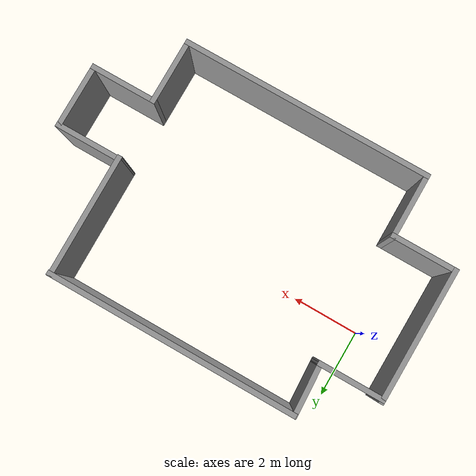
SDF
<?xml version='1.0'?>
<sdf version='1.6'>
  <model name='_MyModel'>
    <pose frame=''>4.29456 -0.852094 0 0 -0 0</pose>
    <link name='Wall_0'>
      <collision name='Wall_0_Collision'>
        <geometry>
          <box>
            <size>4.0589 0.15 2.5</size>
          </box>
        </geometry>
        <pose frame=''>0 0 1.25 0 -0 0</pose>
      </collision>
      <visual name='Wall_0_Visual'>
        <pose frame=''>0 0 1.25 0 -0 0</pose>
        <geometry>
          <box>
            <size>4.0589 0.15 2.5</size>
          </box>
        </geometry>
        <material>
          <script>
            <uri>file://media/materials/scripts/gazebo.material</uri>
            <name>Gazebo/Grey</name>
          </script>
          <ambient>1 1 1 1</ambient>
        </material>
        <meta>
          <layer>0</layer>
        </meta>
      </visual>
      <pose frame=''>-5.50143 0.206406 0 0 -0 1.55896</pose>
    </link>
    <link name='Wall_1'>
      <collision name='Wall_1_Collision'>
        <geometry>
          <box>
            <size>2 0.15 2.5</size>
          </box>
        </geometry>
        <pose frame=''>0 0 1.25 0 -0 0</pose>
      </collision>
      <visual name='Wall_1_Visual'>
        <pose frame=''>0 0 1.25 0 -0 0</pose>
        <geometry>
          <box>
            <size>2 0.15 2.5</size>
          </box>
        </geometry>
        <material>
          <script>
            <uri>file://media/materials/scripts/gazebo.material</uri>
            <name>Gazebo/Grey</name>
          </script>
          <ambient>1 1 1 1</ambient>
        </material>
        <meta>
          <layer>0</layer>
        </meta>
      </visual>
      <pose frame=''>-4.5533 2.11446 0 0 -0 0</pose>
    </link>
    <link name='Wall_10'>
      <collision name='Wall_10_Collision'>
        <geometry>
          <box>
            <size>2 0.15 2.5</size>
          </box>
        </geometry>
        <pose frame=''>0 0 1.25 0 -0 0</pose>
      </collision>
      <visual name='Wall_10_Visual'>
        <pose frame=''>0 0 1.25 0 -0 0</pose>
        <geometry>
          <box>
            <size>2 0.15 2.5</size>
          </box>
        </geometry>
        <material>
          <script>
            <uri>file://media/materials/scripts/gazebo.material</uri>
            <name>Gazebo/Grey</name>
          </script>
          <ambient>1 1 1 1</ambient>
        </material>
        <meta>
          <layer>0</layer>
        </meta>
      </visual>
      <pose frame=''>-3.67456 -2.67291 0 0 -0 1.5708</pose>
    </link>
    <link name='Wall_11'>
      <collision name='Wall_11_Collision'>
        <geometry>
          <box>
            <size>2 0.15 2.5</size>
          </box>
        </geometry>
        <pose frame=''>0 0 1.25 0 -0 0</pose>
      </collision>
      <visual name='Wall_11_Visual'>
        <pose frame=''>0 0 1.25 0 -0 0</pose>
        <geometry>
          <box>
            <size>2 0.15 2.5</size>
          </box>
        </geometry>
        <material>
          <script>
            <uri>file://media/materials/scripts/gazebo.material</uri>
            <name>Gazebo/Grey</name>
          </script>
          <ambient>1 1 1 1</ambient>
        </material>
        <meta>
          <layer>0</layer>
        </meta>
      </visual>
      <pose frame=''>-4.59956 -1.74791 0 0 -0 3.14159</pose>
    </link>
    <link name='Wall_2'>
      <collision name='Wall_2_Collision'>
        <geometry>
          <box>
            <size>1.58533 0.15 2.5</size>
          </box>
        </geometry>
        <pose frame=''>0 0 1.25 0 -0 0</pose>
      </collision>
      <visual name='Wall_2_Visual'>
        <pose frame=''>0 0 1.25 0 -0 0</pose>
        <geometry>
          <box>
            <size>1.58533 0.15 2.5</size>
          </box>
        </geometry>
        <material>
          <script>
            <uri>file://media/materials/scripts/gazebo.material</uri>
            <name>Gazebo/Grey</name>
          </script>
          <ambient>1 1 1 1</ambient>
        </material>
        <meta>
          <layer>0</layer>
        </meta>
      </visual>
      <pose frame=''>-3.66299 2.87754 0 0 -0 1.61916</pose>
    </link>
    <link name='Wall_3'>
      <collision name='Wall_3_Collision'>
        <geometry>
          <box>
            <size>7.5 0.15 2.5</size>
          </box>
        </geometry>
        <pose frame=''>0 0 1.25 0 -0 0</pose>
      </collision>
      <visual name='Wall_3_Visual'>
        <pose frame=''>0 0 1.25 0 -0 0</pose>
        <geometry>
          <box>
            <size>7.5 0.15 2.5</size>
          </box>
        </geometry>
        <material>
          <script>
            <uri>file://media/materials/scripts/gazebo.material</uri>
            <name>Gazebo/Grey</name>
          </script>
          <ambient>1 1 1 1</ambient>
        </material>
        <meta>
          <layer>0</layer>
        </meta>
      </visual>
      <pose frame=''>0.000441 3.59437 0 0 -0 0</pose>
    </link>
    <link name='Wall_4'>
      <collision name='Wall_4_Collision'>
        <geometry>
          <box>
            <size>3.68861 0.15 2.5</size>
          </box>
        </geometry>
        <pose frame=''>0 0 1.25 0 -0 0</pose>
      </collision>
      <visual name='Wall_4_Visual'>
        <pose frame=''>0 0 1.25 0 -0 0</pose>
        <geometry>
          <box>
            <size>3.68861 0.15 2.5</size>
          </box>
        </geometry>
        <material>
          <script>
            <uri>file://media/materials/scripts/gazebo.material</uri>
            <name>Gazebo/Grey</name>
          </script>
          <ambient>1 1 1 1</ambient>
        </material>
        <meta>
          <layer>0</layer>
        </meta>
      </visual>
      <pose frame=''>3.66388 1.8251 0 0 -0 -1.56426</pose>
    </link>
    <link name='Wall_5'>
      <collision name='Wall_5_Collision'>
        <geometry>
          <box>
            <size>2 0.15 2.5</size>
          </box>
        </geometry>
        <pose frame=''>0 0 1.25 0 -0 0</pose>
      </collision>
      <visual name='Wall_5_Visual'>
        <pose frame=''>0 0 1.25 0 -0 0</pose>
        <geometry>
          <box>
            <size>2 0.15 2.5</size>
          </box>
        </geometry>
        <material>
          <script>
            <uri>file://media/materials/scripts/gazebo.material</uri>
            <name>Gazebo/Grey</name>
          </script>
          <ambient>1 1 1 1</ambient>
        </material>
        <meta>
          <layer>0</layer>
        </meta>
      </visual>
      <pose frame=''>4.60044 0.078964 0 0 -0 0</pose>
    </link>
    <link name='Wall_6'>
      <collision name='Wall_6_Collision'>
        <geometry>
          <box>
            <size>1.95374 0.15 2.5</size>
          </box>
        </geometry>
        <pose frame=''>0 0 1.25 0 -0 0</pose>
      </collision>
      <visual name='Wall_6_Visual'>
        <pose frame=''>0 0 1.25 0 -0 0</pose>
        <geometry>
          <box>
            <size>1.95374 0.15 2.5</size>
          </box>
        </geometry>
        <material>
          <script>
            <uri>file://media/materials/scripts/gazebo.material</uri>
            <name>Gazebo/Grey</name>
          </script>
          <ambient>1 1 1 1</ambient>
        </material>
        <meta>
          <layer>0</layer>
        </meta>
      </visual>
      <pose frame=''>5.52544 -0.846036 0 0 -0 -1.5708</pose>
    </link>
    <link name='Wall_7'>
      <collision name='Wall_7_Collision'>
        <geometry>
          <box>
            <size>2 0.15 2.5</size>
          </box>
        </geometry>
        <pose frame=''>0 0 1.25 0 -0 0</pose>
      </collision>
      <visual name='Wall_7_Visual'>
        <pose frame=''>0 0 1.25 0 -0 0</pose>
        <geometry>
          <box>
            <size>2 0.15 2.5</size>
          </box>
        </geometry>
        <material>
          <script>
            <uri>file://media/materials/scripts/gazebo.material</uri>
            <name>Gazebo/Grey</name>
          </script>
          <ambient>1 1 1 1</ambient>
        </material>
        <meta>
          <layer>0</layer>
        </meta>
      </visual>
      <pose frame=''>4.60044 -1.74791 0 0 -0 3.14159</pose>
    </link>
    <link name='Wall_8'>
      <collision name='Wall_8_Collision'>
        <geometry>
          <box>
            <size>2 0.15 2.5</size>
          </box>
        </geometry>
        <pose frame=''>0 0 1.25 0 -0 0</pose>
      </collision>
      <visual name='Wall_8_Visual'>
        <pose frame=''>0 0 1.25 0 -0 0</pose>
        <geometry>
          <box>
            <size>2 0.15 2.5</size>
          </box>
        </geometry>
        <material>
          <script>
            <uri>file://media/materials/scripts/gazebo.material</uri>
            <name>Gazebo/Grey</name>
          </script>
          <ambient>1 1 1 1</ambient>
        </material>
        <meta>
          <layer>0</layer>
        </meta>
      </visual>
      <pose frame=''>3.67544 -2.67291 0 0 -0 -1.5708</pose>
    </link>
    <link name='Wall_9'>
      <collision name='Wall_9_Collision'>
        <geometry>
          <box>
            <size>7.5 0.15 2.5</size>
          </box>
        </geometry>
        <pose frame=''>0 0 1.25 0 -0 0</pose>
      </collision>
      <visual name='Wall_9_Visual'>
        <pose frame=''>0 0 1.25 0 -0 0</pose>
        <geometry>
          <box>
            <size>7.5 0.15 2.5</size>
          </box>
        </geometry>
        <material>
          <script>
            <uri>file://media/materials/scripts/gazebo.material</uri>
            <name>Gazebo/Grey</name>
          </script>
          <ambient>1 1 1 1</ambient>
        </material>
        <meta>
          <layer>0</layer>
        </meta>
      </visual>
      <pose frame=''>0.000441 -3.5979 0 0 -0 3.14159</pose>
    </link>
    <static>1</static>
  </model>
</sdf>
